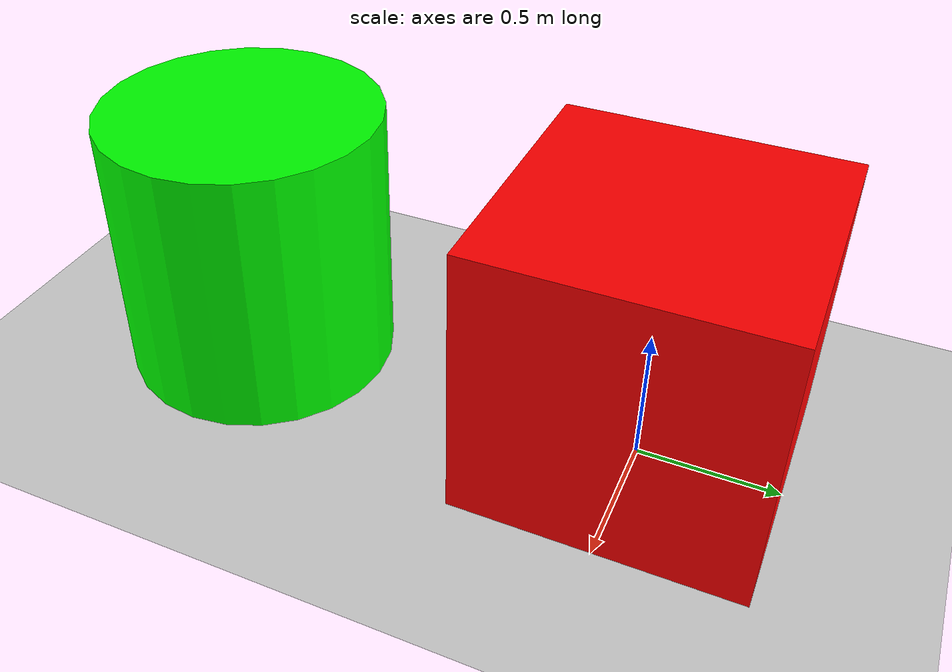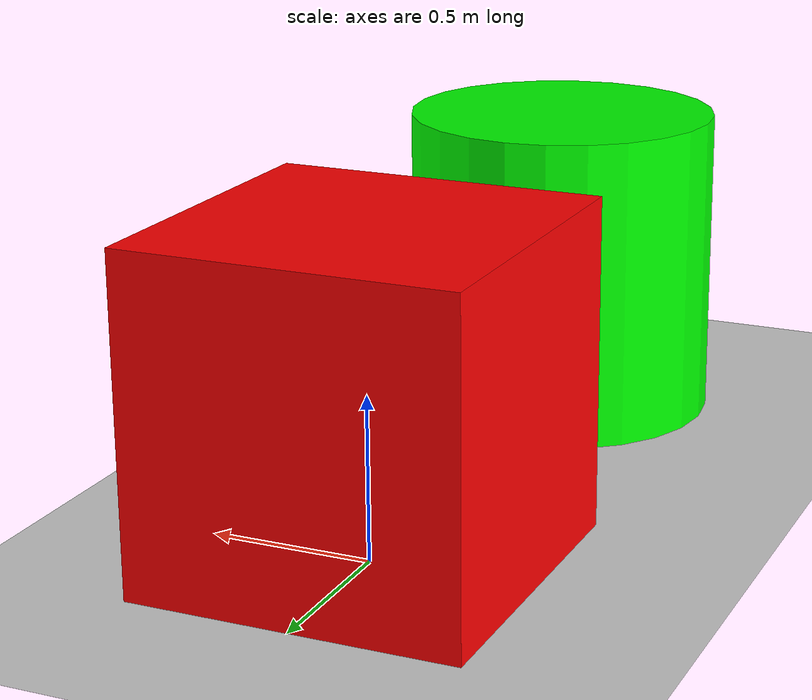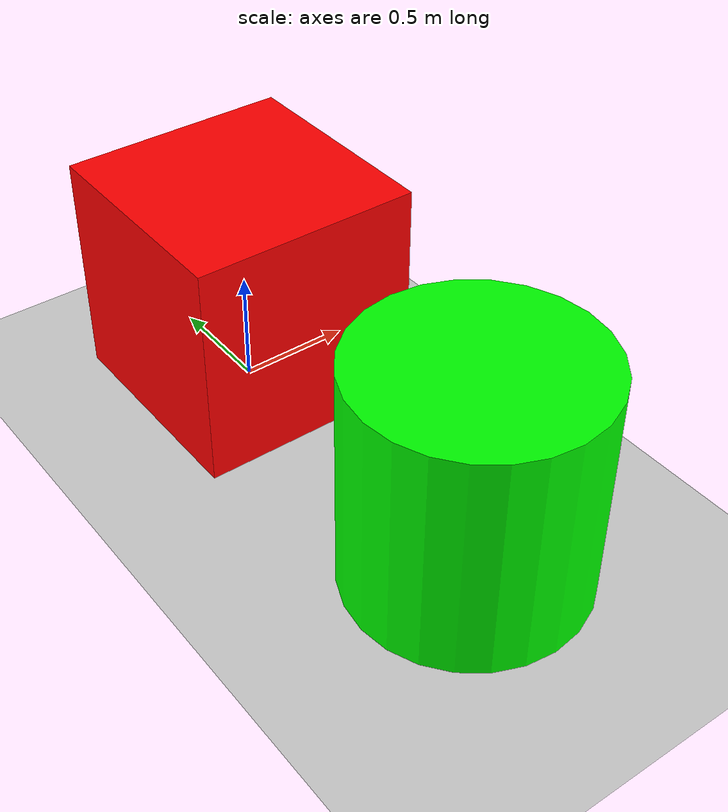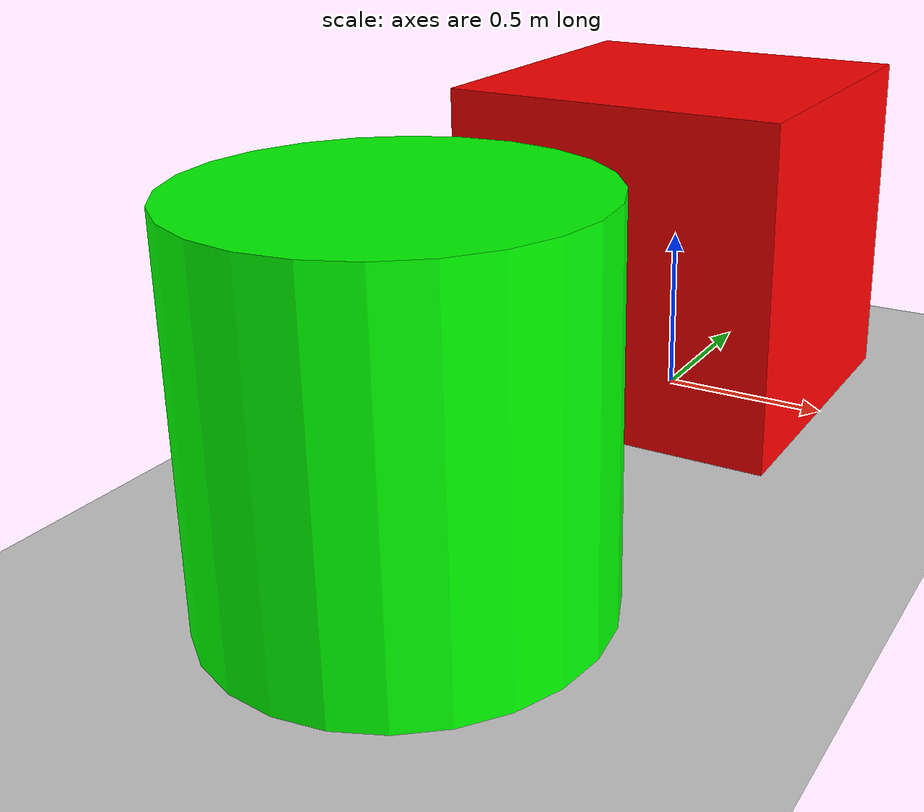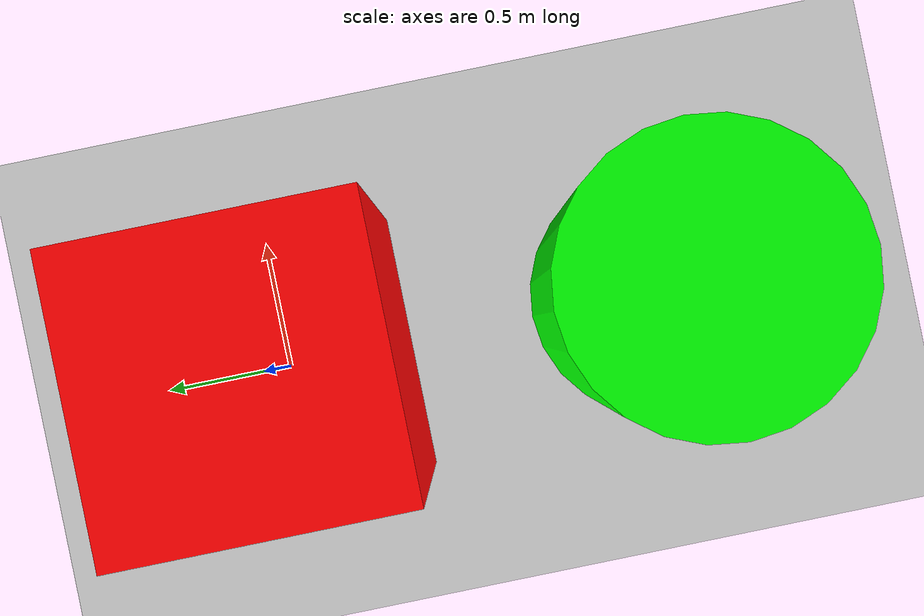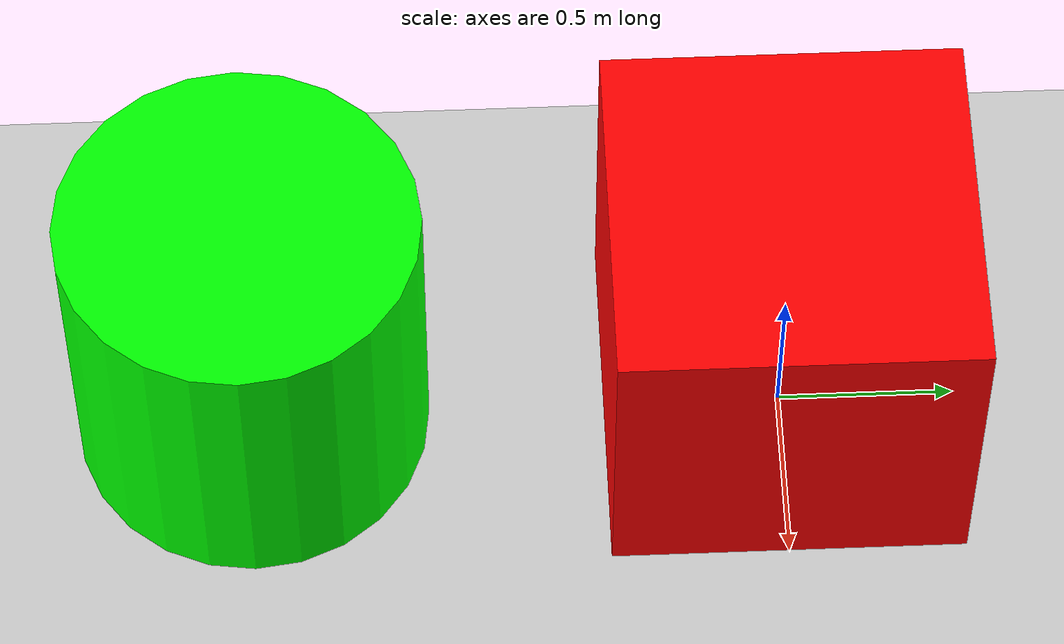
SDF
<sdf version='1.10'>
  <world name='shapes'>
    <plugin
      filename="gz-sim-physics-system"
      name="gz::sim::systems::Physics">
    </plugin>
    <plugin
      filename="gz-sim-scene-broadcaster-system"
      name="gz::sim::systems::SceneBroadcaster">
    </plugin>

    <plugin filename="EntitiesControl" name="gz::sim::v7::systems::EntitiesControl">
    </plugin>

    <plugin name='gz::sim::systems::UserCommands' filename='gz-sim-user-commands-system'/>

    <model name='ground_plane'>
      <static>true</static>
      <link name='link'>
        <collision name='collision'>
          <geometry>
            <plane>
              <normal>0 0 1</normal>
              <size>100 100</size>
            </plane>
          </geometry>
        </collision>

        <visual name='visual'>
          <geometry>
            <plane>
              <normal>0 0 1</normal>
              <size>100 100</size>
            </plane>
          </geometry>
        </visual>

        <inertial>
          <pose>0 0 0 0 0 0</pose>
          <mass>1</mass>
          <inertia>
            <ixx>1</ixx>
            <ixy>0</ixy>
            <ixz>0</ixz>
            <iyy>1</iyy>
            <iyz>0</iyz>
            <izz>1</izz>
          </inertia>
        </inertial>
        <enable_wind>false</enable_wind>

      </link>
      <pose>0 0 0 0 0 0</pose>
      <self_collide>false</self_collide>
    </model>

    <model name='box'>
      <pose>0 0 0.5 0 0 0</pose>
      <link name='link_robocomp'>

      	<sensor name="imu" type="imu">
	        <topic>imu</topic>
	        <always_on>true</always_on>
	        <update_rate>100</update_rate>
        	<visualize>true</visualize>
      	</sensor>

        <inertial>
          <inertia>
            <ixx>0.16666</ixx>
            <ixy>0</ixy>
            <ixz>0</ixz>
            <iyy>0.16666</iyy>
            <iyz>0</iyz>
            <izz>0.16666</izz>
          </inertia>
          <mass>1</mass>
          <pose>0 0 0 0 0 0</pose>
        </inertial>
        <collision name='box_collision'>
          <geometry>
            <box>
              <size>1 1 1</size>
            </box>
          </geometry>
          <surface>
            <friction>
              <ode/>
            </friction>
            <bounce/>
            <contact/>
          </surface>
        </collision>
        <visual name='box_visual'>
          <geometry>
            <box>
              <size>1 1 1</size>
            </box>
          </geometry>
          <material>
            <ambient>1 0 0 1</ambient>
            <diffuse>1 0 0 1</diffuse>
            <specular>1 0 0 1</specular>
          </material>
        </visual>
        <pose>0 0 0 0 0 0</pose>
        <enable_wind>false</enable_wind>
      </link>
      <static>false</static>
      <self_collide>false</self_collide>
    </model>

    <model name='cylinder'>
      <pose>0 -1.5 0.5 0 0 0</pose>
      <link name='cylinder_link'>
        <inertial>
          <inertia>
            <ixx>0.14580000000000001</ixx>
            <ixy>0</ixy>
            <ixz>0</ixz>
            <iyy>0.14580000000000001</iyy>
            <iyz>0</iyz>
            <izz>0.125</izz>
          </inertia>
          <mass>1</mass>
          <pose>0 0 0 0 0 0</pose>
        </inertial>
        <collision name='cylinder_collision'>
          <geometry>
            <cylinder>
              <radius>0.5</radius>
              <length>1</length>
            </cylinder>
          </geometry>
          <surface>
            <friction>
              <ode/>
            </friction>
            <bounce/>
            <contact/>
          </surface>
        </collision>
        <visual name='cylinder_visual'>
          <geometry>
            <cylinder>
              <radius>0.5</radius>
              <length>1</length>
            </cylinder>
          </geometry>
          <material>
            <ambient>0 1 0 1</ambient>
            <diffuse>0 1 0 1</diffuse>
            <specular>0 1 0 1</specular>
          </material>
        </visual>
        <pose>0 0 0 0 0 0</pose>
        <enable_wind>false</enable_wind>
      </link>
      <static>false</static>
      <self_collide>false</self_collide>
    </model>

    <light name='sun' type='directional'>
      <pose>0 0 10 0 0 0</pose>
      <cast_shadows>true</cast_shadows>
      <intensity>1</intensity>
      <direction>-0.5 0.10000000000000001 -0.90000000000000002</direction>
      <diffuse>0.800000012 0.800000012 0.800000012 1</diffuse>
      <specular>0.200000003 0.200000003 0.200000003 1</specular>
      <attenuation>
        <range>1000</range>
        <linear>0.01</linear>
        <constant>0.90000000000000002</constant>
        <quadratic>0.001</quadratic>
      </attenuation>
      <spot>
        <inner_angle>0</inner_angle>
        <outer_angle>0</outer_angle>
        <falloff>0</falloff>
      </spot>
    </light>

  </world>
</sdf>
